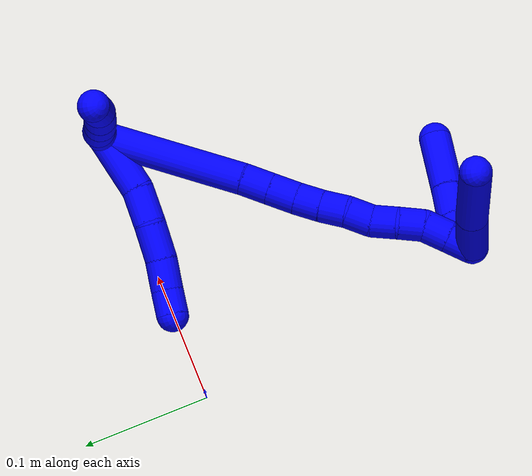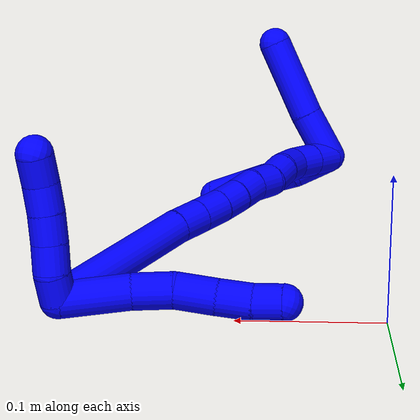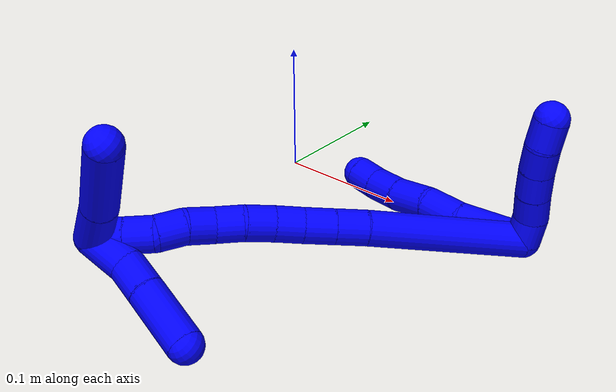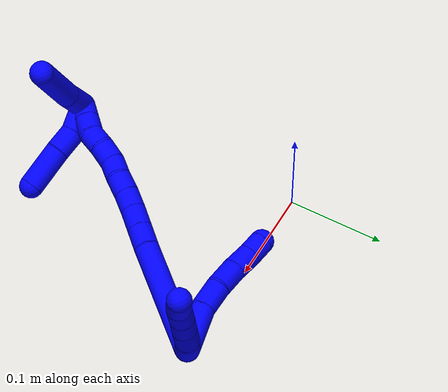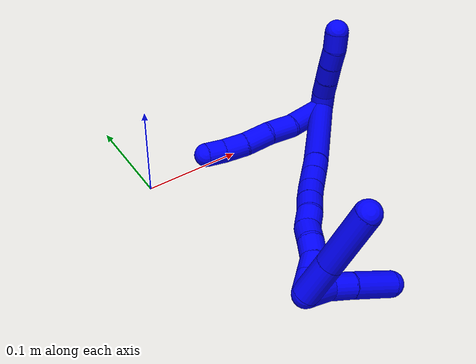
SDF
<sdf version="1.7">
 <world name="default">
  <model name="1">
   <static>0</static>
   <link name="1">
    <collision name="collision-cylinder-e_1_2_8">
     <pose>-0.021466 -0.006007 0.009417 0.56782 -1.09099 -0.350559</pose>
     <geometry><cylinder><radius>0.0125</radius><length>0.048396</length></cylinder></geometry>
     <surface>
      <friction><ode><mu>1.16</mu><mu2>1.16</mu2><slip1>0</slip1><slip2>0</slip2></ode></friction>
      <contact><ode><kp>1e+06</kp><kd>1</kd><max_vel>0</max_vel><min_depth>0.001</min_depth></ode></contact>
     </surface>
    </collision>
    <visual name="visual-cylinder-e_1_2_8">
     <pose>-0.021466 -0.006007 0.009417 0.56782 -1.09099 -0.350559</pose>
     <geometry><cylinder><radius>0.0125</radius><length>0.048396</length></cylinder></geometry>
     <material><ambient>0 0 1 1</ambient></material>
    </visual>
    <collision name="collision-cylinder-e_2_8_9">
     <pose>-0.056591 -0.012776 0.022798 0.189879 -1.28347 -0.142074</pose>
     <geometry><cylinder><radius>0.0125</radius><length>0.028487</length></cylinder></geometry>
     <surface>
      <friction><ode><mu>1.16</mu><mu2>1.16</mu2><slip1>0</slip1><slip2>0</slip2></ode></friction>
      <contact><ode><kp>1e+06</kp><kd>1</kd><max_vel>0</max_vel><min_depth>0.001</min_depth></ode></contact>
     </surface>
    </collision>
    <visual name="visual-cylinder-e_2_8_9">
     <pose>-0.056591 -0.012776 0.022798 0.189879 -1.28347 -0.142074</pose>
     <geometry><cylinder><radius>0.0125</radius><length>0.028487</length></cylinder></geometry>
     <material><ambient>0 0 1 1</ambient></material>
    </visual>
    <collision name="collision-cylinder-e_3_9_10">
     <pose>-0.084316 -0.015399 0.028239 0.899792 -1.40343 -0.775082</pose>
     <geometry><cylinder><radius>0.0125</radius><length>0.02853</length></cylinder></geometry>
     <surface>
      <friction><ode><mu>1.16</mu><mu2>1.16</mu2><slip1>0</slip1><slip2>0</slip2></ode></friction>
      <contact><ode><kp>1e+06</kp><kd>1</kd><max_vel>0</max_vel><min_depth>0.001</min_depth></ode></contact>
     </surface>
    </collision>
    <visual name="visual-cylinder-e_3_9_10">
     <pose>-0.084316 -0.015399 0.028239 0.899792 -1.40343 -0.775082</pose>
     <geometry><cylinder><radius>0.0125</radius><length>0.02853</length></cylinder></geometry>
     <material><ambient>0 0 1 1</ambient></material>
    </visual>
    <collision name="collision-cylinder-e_4_10_11">
     <pose>-0.110575 -0.017236 0.030953 -0.019648 -1.46971 0.017756</pose>
     <geometry><cylinder><radius>0.0125</radius><length>0.02451</length></cylinder></geometry>
     <surface>
      <friction><ode><mu>1.16</mu><mu2>1.16</mu2><slip1>0</slip1><slip2>0</slip2></ode></friction>
      <contact><ode><kp>1e+06</kp><kd>1</kd><max_vel>0</max_vel><min_depth>0.001</min_depth></ode></contact>
     </surface>
    </collision>
    <visual name="visual-cylinder-e_4_10_11">
     <pose>-0.110575 -0.017236 0.030953 -0.019648 -1.46971 0.017756</pose>
     <geometry><cylinder><radius>0.0125</radius><length>0.02451</length></cylinder></geometry>
     <material><ambient>0 0 1 1</ambient></material>
    </visual>
    <collision name="collision-cylinder-e_5_11_6">
     <pose>-0.13255 -0.016676 0.034374 -0.240277 -1.34488 0.191654</pose>
     <geometry><cylinder><radius>0.0125</radius><length>0.020077</length></cylinder></geometry>
     <surface>
      <friction><ode><mu>1.16</mu><mu2>1.16</mu2><slip1>0</slip1><slip2>0</slip2></ode></friction>
      <contact><ode><kp>1e+06</kp><kd>1</kd><max_vel>0</max_vel><min_depth>0.001</min_depth></ode></contact>
     </surface>
    </collision>
    <visual name="visual-cylinder-e_5_11_6">
     <pose>-0.13255 -0.016676 0.034374 -0.240277 -1.34488 0.191654</pose>
     <geometry><cylinder><radius>0.0125</radius><length>0.020077</length></cylinder></geometry>
     <material><ambient>0 0 1 1</ambient></material>
    </visual>
    <collision name="collision-cylinder-e_1_2_12">
     <pose>0.002672 0.006431 0.007177 -0.730622 0.270502 -0.104003</pose>
     <geometry><cylinder><radius>0.0125</radius><length>0.02</length></cylinder></geometry>
     <surface>
      <friction><ode><mu>1.16</mu><mu2>1.16</mu2><slip1>0</slip1><slip2>0</slip2></ode></friction>
      <contact><ode><kp>1e+06</kp><kd>1</kd><max_vel>0</max_vel><min_depth>0.001</min_depth></ode></contact>
     </surface>
    </collision>
    <visual name="visual-cylinder-e_1_2_12">
     <pose>0.002672 0.006431 0.007177 -0.730622 0.270502 -0.104003</pose>
     <geometry><cylinder><radius>0.0125</radius><length>0.02</length></cylinder></geometry>
     <material><ambient>0 0 1 1</ambient></material>
    </visual>
    <collision name="collision-cylinder-e_2_12_13">
     <pose>0.007616 0.017197 0.023074 -0.46135 0.229126 -0.054035</pose>
     <geometry><cylinder><radius>0.0125</radius><length>0.02</length></cylinder></geometry>
     <surface>
      <friction><ode><mu>1.16</mu><mu2>1.16</mu2><slip1>0</slip1><slip2>0</slip2></ode></friction>
      <contact><ode><kp>1e+06</kp><kd>1</kd><max_vel>0</max_vel><min_depth>0.001</min_depth></ode></contact>
     </surface>
    </collision>
    <visual name="visual-cylinder-e_2_12_13">
     <pose>0.007616 0.017197 0.023074 -0.46135 0.229126 -0.054035</pose>
     <geometry><cylinder><radius>0.0125</radius><length>0.02</length></cylinder></geometry>
     <material><ambient>0 0 1 1</ambient></material>
    </visual>
    <collision name="collision-cylinder-e_3_13_14">
     <pose>0.012378 0.026296 0.040226 -0.514346 0.251722 -0.066529</pose>
     <geometry><cylinder><radius>0.0125</radius><length>0.02</length></cylinder></geometry>
     <surface>
      <friction><ode><mu>1.16</mu><mu2>1.16</mu2><slip1>0</slip1><slip2>0</slip2></ode></friction>
      <contact><ode><kp>1e+06</kp><kd>1</kd><max_vel>0</max_vel><min_depth>0.001</min_depth></ode></contact>
     </surface>
    </collision>
    <visual name="visual-cylinder-e_3_13_14">
     <pose>0.012378 0.026296 0.040226 -0.514346 0.251722 -0.066529</pose>
     <geometry><cylinder><radius>0.0125</radius><length>0.02</length></cylinder></geometry>
     <material><ambient>0 0 1 1</ambient></material>
    </visual>
    <collision name="collision-cylinder-e_4_14_15">
     <pose>0.017904 0.036045 0.056779 -0.550418 0.308422 -0.087731</pose>
     <geometry><cylinder><radius>0.0125</radius><length>0.02</length></cylinder></geometry>
     <surface>
      <friction><ode><mu>1.16</mu><mu2>1.16</mu2><slip1>0</slip1><slip2>0</slip2></ode></friction>
      <contact><ode><kp>1e+06</kp><kd>1</kd><max_vel>0</max_vel><min_depth>0.001</min_depth></ode></contact>
     </surface>
    </collision>
    <visual name="visual-cylinder-e_4_14_15">
     <pose>0.017904 0.036045 0.056779 -0.550418 0.308422 -0.087731</pose>
     <geometry><cylinder><radius>0.0125</radius><length>0.02</length></cylinder></geometry>
     <material><ambient>0 0 1 1</ambient></material>
    </visual>
    <collision name="collision-cylinder-e_5_15_5">
     <pose>0.02348 0.047504 0.072083 -0.733658 0.256927 -0.099182</pose>
     <geometry><cylinder><radius>0.0125</radius><length>0.02</length></cylinder></geometry>
     <surface>
      <friction><ode><mu>1.16</mu><mu2>1.16</mu2><slip1>0</slip1><slip2>0</slip2></ode></friction>
      <contact><ode><kp>1e+06</kp><kd>1</kd><max_vel>0</max_vel><min_depth>0.001</min_depth></ode></contact>
     </surface>
    </collision>
    <visual name="visual-cylinder-e_5_15_5">
     <pose>0.02348 0.047504 0.072083 -0.733658 0.256927 -0.099182</pose>
     <geometry><cylinder><radius>0.0125</radius><length>0.02</length></cylinder></geometry>
     <material><ambient>0 0 1 1</ambient></material>
    </visual>
    <collision name="collision-cylinder-e_1_2_16">
     <pose>-0.022954 -0.034773 0.039949 0.71623 -0.408953 -0.154911</pose>
     <geometry><cylinder><radius>0.0125</radius><length>0.115446</length></cylinder></geometry>
     <surface>
      <friction><ode><mu>1.16</mu><mu2>1.16</mu2><slip1>0</slip1><slip2>0</slip2></ode></friction>
      <contact><ode><kp>1e+06</kp><kd>1</kd><max_vel>0</max_vel><min_depth>0.001</min_depth></ode></contact>
     </surface>
    </collision>
    <visual name="visual-cylinder-e_1_2_16">
     <pose>-0.022954 -0.034773 0.039949 0.71623 -0.408953 -0.154911</pose>
     <geometry><cylinder><radius>0.0125</radius><length>0.115446</length></cylinder></geometry>
     <material><ambient>0 0 1 1</ambient></material>
    </visual>
    <collision name="collision-cylinder-e_2_16_17">
     <pose>-0.050934 -0.076451 0.086883 0.77974 -0.473073 -0.197451</pose>
     <geometry><cylinder><radius>0.0125</radius><length>0.022067</length></cylinder></geometry>
     <surface>
      <friction><ode><mu>1.16</mu><mu2>1.16</mu2><slip1>0</slip1><slip2>0</slip2></ode></friction>
      <contact><ode><kp>1e+06</kp><kd>1</kd><max_vel>0</max_vel><min_depth>0.001</min_depth></ode></contact>
     </surface>
    </collision>
    <visual name="visual-cylinder-e_2_16_17">
     <pose>-0.050934 -0.076451 0.086883 0.77974 -0.473073 -0.197451</pose>
     <geometry><cylinder><radius>0.0125</radius><length>0.022067</length></cylinder></geometry>
     <material><ambient>0 0 1 1</ambient></material>
    </visual>
    <collision name="collision-cylinder-e_3_17_18">
     <pose>-0.060954 -0.090231 0.10089 0.774721 -0.470045 -0.194758</pose>
     <geometry><cylinder><radius>0.0125</radius><length>0.022045</length></cylinder></geometry>
     <surface>
      <friction><ode><mu>1.16</mu><mu2>1.16</mu2><slip1>0</slip1><slip2>0</slip2></ode></friction>
      <contact><ode><kp>1e+06</kp><kd>1</kd><max_vel>0</max_vel><min_depth>0.001</min_depth></ode></contact>
     </surface>
    </collision>
    <visual name="visual-cylinder-e_3_17_18">
     <pose>-0.060954 -0.090231 0.10089 0.774721 -0.470045 -0.194758</pose>
     <geometry><cylinder><radius>0.0125</radius><length>0.022045</length></cylinder></geometry>
     <material><ambient>0 0 1 1</ambient></material>
    </visual>
    <collision name="collision-cylinder-e_4_18_19">
     <pose>-0.070013 -0.103281 0.114678 0.73983 -0.417859 -0.164062</pose>
     <geometry><cylinder><radius>0.0125</radius><length>0.020045</length></cylinder></geometry>
     <surface>
      <friction><ode><mu>1.16</mu><mu2>1.16</mu2><slip1>0</slip1><slip2>0</slip2></ode></friction>
      <contact><ode><kp>1e+06</kp><kd>1</kd><max_vel>0</max_vel><min_depth>0.001</min_depth></ode></contact>
     </surface>
    </collision>
    <visual name="visual-cylinder-e_4_18_19">
     <pose>-0.070013 -0.103281 0.114678 0.73983 -0.417859 -0.164062</pose>
     <geometry><cylinder><radius>0.0125</radius><length>0.020045</length></cylinder></geometry>
     <material><ambient>0 0 1 1</ambient></material>
    </visual>
    <collision name="collision-cylinder-e_5_19_20">
     <pose>-0.0775 -0.115947 0.12832 0.756542 -0.347027 -0.139088</pose>
     <geometry><cylinder><radius>0.0125</radius><length>0.02011</length></cylinder></geometry>
     <surface>
      <friction><ode><mu>1.16</mu><mu2>1.16</mu2><slip1>0</slip1><slip2>0</slip2></ode></friction>
      <contact><ode><kp>1e+06</kp><kd>1</kd><max_vel>0</max_vel><min_depth>0.001</min_depth></ode></contact>
     </surface>
    </collision>
    <visual name="visual-cylinder-e_5_19_20">
     <pose>-0.0775 -0.115947 0.12832 0.756542 -0.347027 -0.139088</pose>
     <geometry><cylinder><radius>0.0125</radius><length>0.02011</length></cylinder></geometry>
     <material><ambient>0 0 1 1</ambient></material>
    </visual>
    <collision name="collision-cylinder-e_6_20_21">
     <pose>-0.085654 -0.129431 0.140562 0.916374 -0.492813 -0.246832</pose>
     <geometry><cylinder><radius>0.0125</radius><length>0.020012</length></cylinder></geometry>
     <surface>
      <friction><ode><mu>1.16</mu><mu2>1.16</mu2><slip1>0</slip1><slip2>0</slip2></ode></friction>
      <contact><ode><kp>1e+06</kp><kd>1</kd><max_vel>0</max_vel><min_depth>0.001</min_depth></ode></contact>
     </surface>
    </collision>
    <visual name="visual-cylinder-e_6_20_21">
     <pose>-0.085654 -0.129431 0.140562 0.916374 -0.492813 -0.246832</pose>
     <geometry><cylinder><radius>0.0125</radius><length>0.020012</length></cylinder></geometry>
     <material><ambient>0 0 1 1</ambient></material>
    </visual>
    <collision name="collision-cylinder-e_7_21_22">
     <pose>-0.09243 -0.143332 0.152934 0.778245 -0.204657 -0.08416</pose>
     <geometry><cylinder><radius>0.0125</radius><length>0.020095</length></cylinder></geometry>
     <surface>
      <friction><ode><mu>1.16</mu><mu2>1.16</mu2><slip1>0</slip1><slip2>0</slip2></ode></friction>
      <contact><ode><kp>1e+06</kp><kd>1</kd><max_vel>0</max_vel><min_depth>0.001</min_depth></ode></contact>
     </surface>
    </collision>
    <visual name="visual-cylinder-e_7_21_22">
     <pose>-0.09243 -0.143332 0.152934 0.778245 -0.204657 -0.08416</pose>
     <geometry><cylinder><radius>0.0125</radius><length>0.020095</length></cylinder></geometry>
     <material><ambient>0 0 1 1</ambient></material>
    </visual>
    <collision name="collision-cylinder-e_8_22_23">
     <pose>-0.096795 -0.158458 0.165164 1.00467 -0.234184 -0.129058</pose>
     <geometry><cylinder><radius>0.0125</radius><length>0.020026</length></cylinder></geometry>
     <surface>
      <friction><ode><mu>1.16</mu><mu2>1.16</mu2><slip1>0</slip1><slip2>0</slip2></ode></friction>
      <contact><ode><kp>1e+06</kp><kd>1</kd><max_vel>0</max_vel><min_depth>0.001</min_depth></ode></contact>
     </surface>
    </collision>
    <visual name="visual-cylinder-e_8_22_23">
     <pose>-0.096795 -0.158458 0.165164 1.00467 -0.234184 -0.129058</pose>
     <geometry><cylinder><radius>0.0125</radius><length>0.020026</length></cylinder></geometry>
     <material><ambient>0 0 1 1</ambient></material>
    </visual>
    <collision name="collision-cylinder-e_9_23_24">
     <pose>-0.104502 -0.173488 0.175436 0.932839 -0.565814 -0.290658</pose>
     <geometry><cylinder><radius>0.0125</radius><length>0.020084</length></cylinder></geometry>
     <surface>
      <friction><ode><mu>1.16</mu><mu2>1.16</mu2><slip1>0</slip1><slip2>0</slip2></ode></friction>
      <contact><ode><kp>1e+06</kp><kd>1</kd><max_vel>0</max_vel><min_depth>0.001</min_depth></ode></contact>
     </surface>
    </collision>
    <visual name="visual-cylinder-e_9_23_24">
     <pose>-0.104502 -0.173488 0.175436 0.932839 -0.565814 -0.290658</pose>
     <geometry><cylinder><radius>0.0125</radius><length>0.020084</length></cylinder></geometry>
     <material><ambient>0 0 1 1</ambient></material>
    </visual>
    <collision name="collision-cylinder-e_10_24_1">
     <pose>-0.115331 -0.187081 0.185488 0.93524 -0.573571 -0.295677</pose>
     <geometry><cylinder><radius>0.0125</radius><length>0.020069</length></cylinder></geometry>
     <surface>
      <friction><ode><mu>1.16</mu><mu2>1.16</mu2><slip1>0</slip1><slip2>0</slip2></ode></friction>
      <contact><ode><kp>1e+06</kp><kd>1</kd><max_vel>0</max_vel><min_depth>0.001</min_depth></ode></contact>
     </surface>
    </collision>
    <visual name="visual-cylinder-e_10_24_1">
     <pose>-0.115331 -0.187081 0.185488 0.93524 -0.573571 -0.295677</pose>
     <geometry><cylinder><radius>0.0125</radius><length>0.020069</length></cylinder></geometry>
     <material><ambient>0 0 1 1</ambient></material>
    </visual>
    <collision name="collision-cylinder-e_1_1_25">
     <pose>-0.109022 -0.193814 0.181143 -3.13628 0.898867 -3.13058</pose>
     <geometry><cylinder><radius>0.0125</radius><length>0.030038</length></cylinder></geometry>
     <surface>
      <friction><ode><mu>1.16</mu><mu2>1.16</mu2><slip1>0</slip1><slip2>0</slip2></ode></friction>
      <contact><ode><kp>1e+06</kp><kd>1</kd><max_vel>0</max_vel><min_depth>0.001</min_depth></ode></contact>
     </surface>
    </collision>
    <visual name="visual-cylinder-e_1_1_25">
     <pose>-0.109022 -0.193814 0.181143 -3.13628 0.898867 -3.13058</pose>
     <geometry><cylinder><radius>0.0125</radius><length>0.030038</length></cylinder></geometry>
     <material><ambient>0 0 1 1</ambient></material>
    </visual>
    <collision name="collision-cylinder-e_2_25_26">
     <pose>-0.086153 -0.196415 0.166873 2.6475 1.10491 2.36496</pose>
     <geometry><cylinder><radius>0.0125</radius><length>0.024883</length></cylinder></geometry>
     <surface>
      <friction><ode><mu>1.16</mu><mu2>1.16</mu2><slip1>0</slip1><slip2>0</slip2></ode></friction>
      <contact><ode><kp>1e+06</kp><kd>1</kd><max_vel>0</max_vel><min_depth>0.001</min_depth></ode></contact>
     </surface>
    </collision>
    <visual name="visual-cylinder-e_2_25_26">
     <pose>-0.086153 -0.196415 0.166873 2.6475 1.10491 2.36496</pose>
     <geometry><cylinder><radius>0.0125</radius><length>0.024883</length></cylinder></geometry>
     <material><ambient>0 0 1 1</ambient></material>
    </visual>
    <collision name="collision-cylinder-e_3_26_4">
     <pose>-0.055629 -0.204142 0.151676 2.68275 1.03731 2.36485</pose>
     <geometry><cylinder><radius>0.0125</radius><length>0.045079</length></cylinder></geometry>
     <surface>
      <friction><ode><mu>1.16</mu><mu2>1.16</mu2><slip1>0</slip1><slip2>0</slip2></ode></friction>
      <contact><ode><kp>1e+06</kp><kd>1</kd><max_vel>0</max_vel><min_depth>0.001</min_depth></ode></contact>
     </surface>
    </collision>
    <visual name="visual-cylinder-e_3_26_4">
     <pose>-0.055629 -0.204142 0.151676 2.68275 1.03731 2.36485</pose>
     <geometry><cylinder><radius>0.0125</radius><length>0.045079</length></cylinder></geometry>
     <material><ambient>0 0 1 1</ambient></material>
    </visual>
    <collision name="collision-cylinder-e_1_1_27">
     <pose>-0.108728 -0.186198 0.20333 -0.538287 0.678266 -0.193998</pose>
     <geometry><cylinder><radius>0.0125</radius><length>0.038405</length></cylinder></geometry>
     <surface>
      <friction><ode><mu>1.16</mu><mu2>1.16</mu2><slip1>0</slip1><slip2>0</slip2></ode></friction>
      <contact><ode><kp>1e+06</kp><kd>1</kd><max_vel>0</max_vel><min_depth>0.001</min_depth></ode></contact>
     </surface>
    </collision>
    <visual name="visual-cylinder-e_1_1_27">
     <pose>-0.108728 -0.186198 0.20333 -0.538287 0.678266 -0.193998</pose>
     <geometry><cylinder><radius>0.0125</radius><length>0.038405</length></cylinder></geometry>
     <material><ambient>0 0 1 1</ambient></material>
    </visual>
    <collision name="collision-cylinder-e_2_27_3">
     <pose>-0.07912 -0.166688 0.238525 -0.487178 0.606693 -0.155267</pose>
     <geometry><cylinder><radius>0.0125</radius><length>0.061595</length></cylinder></geometry>
     <surface>
      <friction><ode><mu>1.16</mu><mu2>1.16</mu2><slip1>0</slip1><slip2>0</slip2></ode></friction>
      <contact><ode><kp>1e+06</kp><kd>1</kd><max_vel>0</max_vel><min_depth>0.001</min_depth></ode></contact>
     </surface>
    </collision>
    <visual name="visual-cylinder-e_2_27_3">
     <pose>-0.07912 -0.166688 0.238525 -0.487178 0.606693 -0.155267</pose>
     <geometry><cylinder><radius>0.0125</radius><length>0.061595</length></cylinder></geometry>
     <material><ambient>0 0 1 1</ambient></material>
    </visual>
    <collision name="collision-sphere-3">
     <pose>-0.061561 -0.154844 0.260883 0 -0 0</pose>
     <geometry><sphere><radius>0.0125</radius></sphere></geometry>
     <surface>
      <friction><ode><mu>1.16</mu><mu2>1.16</mu2><slip1>0</slip1><slip2>0</slip2></ode></friction>
      <contact><ode><kp>1e+06</kp><kd>1</kd><max_vel>0</max_vel><min_depth>0.001</min_depth></ode></contact>
     </surface>
    </collision>
    <visual name="visual-sphere-3">
     <pose>-0.061561 -0.154844 0.260883 0 -0 0</pose>
     <geometry><sphere><radius>0.0125</radius></sphere></geometry>
     <material><ambient>0 0 1 1</ambient></material>
    </visual>
    <collision name="collision-sphere-27">
     <pose>-0.096679 -0.178533 0.216168 0 -0 0</pose>
     <geometry><sphere><radius>0.0125</radius></sphere></geometry>
     <surface>
      <friction><ode><mu>1.16</mu><mu2>1.16</mu2><slip1>0</slip1><slip2>0</slip2></ode></friction>
      <contact><ode><kp>1e+06</kp><kd>1</kd><max_vel>0</max_vel><min_depth>0.001</min_depth></ode></contact>
     </surface>
    </collision>
    <visual name="visual-sphere-27">
     <pose>-0.096679 -0.178533 0.216168 0 -0 0</pose>
     <geometry><sphere><radius>0.0125</radius></sphere></geometry>
     <material><ambient>0 0 1 1</ambient></material>
    </visual>
    <collision name="collision-sphere-4">
     <pose>-0.036222 -0.209219 0.1414 0 -0 0</pose>
     <geometry><sphere><radius>0.0125</radius></sphere></geometry>
     <surface>
      <friction><ode><mu>1.16</mu><mu2>1.16</mu2><slip1>0</slip1><slip2>0</slip2></ode></friction>
      <contact><ode><kp>1e+06</kp><kd>1</kd><max_vel>0</max_vel><min_depth>0.001</min_depth></ode></contact>
     </surface>
    </collision>
    <visual name="visual-sphere-4">
     <pose>-0.036222 -0.209219 0.1414 0 -0 0</pose>
     <geometry><sphere><radius>0.0125</radius></sphere></geometry>
     <material><ambient>0 0 1 1</ambient></material>
    </visual>
    <collision name="collision-sphere-26">
     <pose>-0.075037 -0.199065 0.161953 0 -0 0</pose>
     <geometry><sphere><radius>0.0125</radius></sphere></geometry>
     <surface>
      <friction><ode><mu>1.16</mu><mu2>1.16</mu2><slip1>0</slip1><slip2>0</slip2></ode></friction>
      <contact><ode><kp>1e+06</kp><kd>1</kd><max_vel>0</max_vel><min_depth>0.001</min_depth></ode></contact>
     </surface>
    </collision>
    <visual name="visual-sphere-26">
     <pose>-0.075037 -0.199065 0.161953 0 -0 0</pose>
     <geometry><sphere><radius>0.0125</radius></sphere></geometry>
     <material><ambient>0 0 1 1</ambient></material>
    </visual>
    <collision name="collision-sphere-25">
     <pose>-0.097268 -0.193765 0.171794 0 -0 0</pose>
     <geometry><sphere><radius>0.0125</radius></sphere></geometry>
     <surface>
      <friction><ode><mu>1.16</mu><mu2>1.16</mu2><slip1>0</slip1><slip2>0</slip2></ode></friction>
      <contact><ode><kp>1e+06</kp><kd>1</kd><max_vel>0</max_vel><min_depth>0.001</min_depth></ode></contact>
     </surface>
    </collision>
    <visual name="visual-sphere-25">
     <pose>-0.097268 -0.193765 0.171794 0 -0 0</pose>
     <geometry><sphere><radius>0.0125</radius></sphere></geometry>
     <material><ambient>0 0 1 1</ambient></material>
    </visual>
    <collision name="collision-sphere-1">
     <pose>-0.120776 -0.193864 0.190492 0 -0 0</pose>
     <geometry><sphere><radius>0.0125</radius></sphere></geometry>
     <surface>
      <friction><ode><mu>1.16</mu><mu2>1.16</mu2><slip1>0</slip1><slip2>0</slip2></ode></friction>
      <contact><ode><kp>1e+06</kp><kd>1</kd><max_vel>0</max_vel><min_depth>0.001</min_depth></ode></contact>
     </surface>
    </collision>
    <visual name="visual-sphere-1">
     <pose>-0.120776 -0.193864 0.190492 0 -0 0</pose>
     <geometry><sphere><radius>0.0125</radius></sphere></geometry>
     <material><ambient>0 0 1 1</ambient></material>
    </visual>
    <collision name="collision-sphere-24">
     <pose>-0.109886 -0.180298 0.180485 0 -0 0</pose>
     <geometry><sphere><radius>0.0125</radius></sphere></geometry>
     <surface>
      <friction><ode><mu>1.16</mu><mu2>1.16</mu2><slip1>0</slip1><slip2>0</slip2></ode></friction>
      <contact><ode><kp>1e+06</kp><kd>1</kd><max_vel>0</max_vel><min_depth>0.001</min_depth></ode></contact>
     </surface>
    </collision>
    <visual name="visual-sphere-24">
     <pose>-0.109886 -0.180298 0.180485 0 -0 0</pose>
     <geometry><sphere><radius>0.0125</radius></sphere></geometry>
     <material><ambient>0 0 1 1</ambient></material>
    </visual>
    <collision name="collision-sphere-23">
     <pose>-0.099119 -0.166678 0.170388 0 -0 0</pose>
     <geometry><sphere><radius>0.0125</radius></sphere></geometry>
     <surface>
      <friction><ode><mu>1.16</mu><mu2>1.16</mu2><slip1>0</slip1><slip2>0</slip2></ode></friction>
      <contact><ode><kp>1e+06</kp><kd>1</kd><max_vel>0</max_vel><min_depth>0.001</min_depth></ode></contact>
     </surface>
    </collision>
    <visual name="visual-sphere-23">
     <pose>-0.099119 -0.166678 0.170388 0 -0 0</pose>
     <geometry><sphere><radius>0.0125</radius></sphere></geometry>
     <material><ambient>0 0 1 1</ambient></material>
    </visual>
    <collision name="collision-sphere-22">
     <pose>-0.094472 -0.150238 0.15994 0 -0 0</pose>
     <geometry><sphere><radius>0.0125</radius></sphere></geometry>
     <surface>
      <friction><ode><mu>1.16</mu><mu2>1.16</mu2><slip1>0</slip1><slip2>0</slip2></ode></friction>
      <contact><ode><kp>1e+06</kp><kd>1</kd><max_vel>0</max_vel><min_depth>0.001</min_depth></ode></contact>
     </surface>
    </collision>
    <visual name="visual-sphere-22">
     <pose>-0.094472 -0.150238 0.15994 0 -0 0</pose>
     <geometry><sphere><radius>0.0125</radius></sphere></geometry>
     <material><ambient>0 0 1 1</ambient></material>
    </visual>
    <collision name="collision-sphere-21">
     <pose>-0.090388 -0.136425 0.145928 0 -0 0</pose>
     <geometry><sphere><radius>0.0125</radius></sphere></geometry>
     <surface>
      <friction><ode><mu>1.16</mu><mu2>1.16</mu2><slip1>0</slip1><slip2>0</slip2></ode></friction>
      <contact><ode><kp>1e+06</kp><kd>1</kd><max_vel>0</max_vel><min_depth>0.001</min_depth></ode></contact>
     </surface>
    </collision>
    <visual name="visual-sphere-21">
     <pose>-0.090388 -0.136425 0.145928 0 -0 0</pose>
     <geometry><sphere><radius>0.0125</radius></sphere></geometry>
     <material><ambient>0 0 1 1</ambient></material>
    </visual>
    <collision name="collision-sphere-6">
     <pose>-0.142334 -0.016141 0.036558 0 -0 0</pose>
     <geometry><sphere><radius>0.0125</radius></sphere></geometry>
     <surface>
      <friction><ode><mu>1.16</mu><mu2>1.16</mu2><slip1>0</slip1><slip2>0</slip2></ode></friction>
      <contact><ode><kp>1e+06</kp><kd>1</kd><max_vel>0</max_vel><min_depth>0.001</min_depth></ode></contact>
     </surface>
    </collision>
    <visual name="visual-sphere-6">
     <pose>-0.142334 -0.016141 0.036558 0 -0 0</pose>
     <geometry><sphere><radius>0.0125</radius></sphere></geometry>
     <material><ambient>0 0 1 1</ambient></material>
    </visual>
    <collision name="collision-sphere-11">
     <pose>-0.122767 -0.017212 0.03219 0 -0 0</pose>
     <geometry><sphere><radius>0.0125</radius></sphere></geometry>
     <surface>
      <friction><ode><mu>1.16</mu><mu2>1.16</mu2><slip1>0</slip1><slip2>0</slip2></ode></friction>
      <contact><ode><kp>1e+06</kp><kd>1</kd><max_vel>0</max_vel><min_depth>0.001</min_depth></ode></contact>
     </surface>
    </collision>
    <visual name="visual-sphere-11">
     <pose>-0.122767 -0.017212 0.03219 0 -0 0</pose>
     <geometry><sphere><radius>0.0125</radius></sphere></geometry>
     <material><ambient>0 0 1 1</ambient></material>
    </visual>
    <collision name="collision-sphere-10">
     <pose>-0.098382 -0.01726 0.029717 0 -0 0</pose>
     <geometry><sphere><radius>0.0125</radius></sphere></geometry>
     <surface>
      <friction><ode><mu>1.16</mu><mu2>1.16</mu2><slip1>0</slip1><slip2>0</slip2></ode></friction>
      <contact><ode><kp>1e+06</kp><kd>1</kd><max_vel>0</max_vel><min_depth>0.001</min_depth></ode></contact>
     </surface>
    </collision>
    <visual name="visual-sphere-10">
     <pose>-0.098382 -0.01726 0.029717 0 -0 0</pose>
     <geometry><sphere><radius>0.0125</radius></sphere></geometry>
     <material><ambient>0 0 1 1</ambient></material>
    </visual>
    <collision name="collision-sphere-9">
     <pose>-0.070251 -0.013538 0.026762 0 -0 0</pose>
     <geometry><sphere><radius>0.0125</radius></sphere></geometry>
     <surface>
      <friction><ode><mu>1.16</mu><mu2>1.16</mu2><slip1>0</slip1><slip2>0</slip2></ode></friction>
      <contact><ode><kp>1e+06</kp><kd>1</kd><max_vel>0</max_vel><min_depth>0.001</min_depth></ode></contact>
     </surface>
    </collision>
    <visual name="visual-sphere-9">
     <pose>-0.070251 -0.013538 0.026762 0 -0 0</pose>
     <geometry><sphere><radius>0.0125</radius></sphere></geometry>
     <material><ambient>0 0 1 1</ambient></material>
    </visual>
    <collision name="collision-sphere-2">
     <geometry><sphere><radius>0.0125</radius></sphere></geometry>
     <surface>
      <friction><ode><mu>1.16</mu><mu2>1.16</mu2><slip1>0</slip1><slip2>0</slip2></ode></friction>
      <contact><ode><kp>1e+06</kp><kd>1</kd><max_vel>0</max_vel><min_depth>0.001</min_depth></ode></contact>
     </surface>
    </collision>
    <visual name="visual-sphere-2">
     <geometry><sphere><radius>0.0125</radius></sphere></geometry>
     <material><ambient>0 0 1 1</ambient></material>
    </visual>
    <collision name="collision-sphere-19">
     <pose>-0.074081 -0.109456 0.121443 0 -0 0</pose>
     <geometry><sphere><radius>0.0125</radius></sphere></geometry>
     <surface>
      <friction><ode><mu>1.16</mu><mu2>1.16</mu2><slip1>0</slip1><slip2>0</slip2></ode></friction>
      <contact><ode><kp>1e+06</kp><kd>1</kd><max_vel>0</max_vel><min_depth>0.001</min_depth></ode></contact>
     </surface>
    </collision>
    <visual name="visual-sphere-19">
     <pose>-0.074081 -0.109456 0.121443 0 -0 0</pose>
     <geometry><sphere><radius>0.0125</radius></sphere></geometry>
     <material><ambient>0 0 1 1</ambient></material>
    </visual>
    <collision name="collision-sphere-8">
     <pose>-0.042931 -0.012014 0.018834 0 -0 0</pose>
     <geometry><sphere><radius>0.0125</radius></sphere></geometry>
     <surface>
      <friction><ode><mu>1.16</mu><mu2>1.16</mu2><slip1>0</slip1><slip2>0</slip2></ode></friction>
      <contact><ode><kp>1e+06</kp><kd>1</kd><max_vel>0</max_vel><min_depth>0.001</min_depth></ode></contact>
     </surface>
    </collision>
    <visual name="visual-sphere-8">
     <pose>-0.042931 -0.012014 0.018834 0 -0 0</pose>
     <geometry><sphere><radius>0.0125</radius></sphere></geometry>
     <material><ambient>0 0 1 1</ambient></material>
    </visual>
    <collision name="collision-sphere-12">
     <pose>0.005344 0.012861 0.014354 0 -0 0</pose>
     <geometry><sphere><radius>0.0125</radius></sphere></geometry>
     <surface>
      <friction><ode><mu>1.16</mu><mu2>1.16</mu2><slip1>0</slip1><slip2>0</slip2></ode></friction>
      <contact><ode><kp>1e+06</kp><kd>1</kd><max_vel>0</max_vel><min_depth>0.001</min_depth></ode></contact>
     </surface>
    </collision>
    <visual name="visual-sphere-12">
     <pose>0.005344 0.012861 0.014354 0 -0 0</pose>
     <geometry><sphere><radius>0.0125</radius></sphere></geometry>
     <material><ambient>0 0 1 1</ambient></material>
    </visual>
    <collision name="collision-sphere-13">
     <pose>0.009887 0.021532 0.031795 0 -0 0</pose>
     <geometry><sphere><radius>0.0125</radius></sphere></geometry>
     <surface>
      <friction><ode><mu>1.16</mu><mu2>1.16</mu2><slip1>0</slip1><slip2>0</slip2></ode></friction>
      <contact><ode><kp>1e+06</kp><kd>1</kd><max_vel>0</max_vel><min_depth>0.001</min_depth></ode></contact>
     </surface>
    </collision>
    <visual name="visual-sphere-13">
     <pose>0.009887 0.021532 0.031795 0 -0 0</pose>
     <geometry><sphere><radius>0.0125</radius></sphere></geometry>
     <material><ambient>0 0 1 1</ambient></material>
    </visual>
    <collision name="collision-sphere-14">
     <pose>0.014868 0.031061 0.048658 0 -0 0</pose>
     <geometry><sphere><radius>0.0125</radius></sphere></geometry>
     <surface>
      <friction><ode><mu>1.16</mu><mu2>1.16</mu2><slip1>0</slip1><slip2>0</slip2></ode></friction>
      <contact><ode><kp>1e+06</kp><kd>1</kd><max_vel>0</max_vel><min_depth>0.001</min_depth></ode></contact>
     </surface>
    </collision>
    <visual name="visual-sphere-14">
     <pose>0.014868 0.031061 0.048658 0 -0 0</pose>
     <geometry><sphere><radius>0.0125</radius></sphere></geometry>
     <material><ambient>0 0 1 1</ambient></material>
    </visual>
    <collision name="collision-sphere-15">
     <pose>0.020939 0.041028 0.0649 0 -0 0</pose>
     <geometry><sphere><radius>0.0125</radius></sphere></geometry>
     <surface>
      <friction><ode><mu>1.16</mu><mu2>1.16</mu2><slip1>0</slip1><slip2>0</slip2></ode></friction>
      <contact><ode><kp>1e+06</kp><kd>1</kd><max_vel>0</max_vel><min_depth>0.001</min_depth></ode></contact>
     </surface>
    </collision>
    <visual name="visual-sphere-15">
     <pose>0.020939 0.041028 0.0649 0 -0 0</pose>
     <geometry><sphere><radius>0.0125</radius></sphere></geometry>
     <material><ambient>0 0 1 1</ambient></material>
    </visual>
    <collision name="collision-sphere-5">
     <pose>0.026022 0.053981 0.079267 0 -0 0</pose>
     <geometry><sphere><radius>0.0125</radius></sphere></geometry>
     <surface>
      <friction><ode><mu>1.16</mu><mu2>1.16</mu2><slip1>0</slip1><slip2>0</slip2></ode></friction>
      <contact><ode><kp>1e+06</kp><kd>1</kd><max_vel>0</max_vel><min_depth>0.001</min_depth></ode></contact>
     </surface>
    </collision>
    <visual name="visual-sphere-5">
     <pose>0.026022 0.053981 0.079267 0 -0 0</pose>
     <geometry><sphere><radius>0.0125</radius></sphere></geometry>
     <material><ambient>0 0 1 1</ambient></material>
    </visual>
    <collision name="collision-sphere-16">
     <pose>-0.045907 -0.069545 0.079899 0 -0 0</pose>
     <geometry><sphere><radius>0.0125</radius></sphere></geometry>
     <surface>
      <friction><ode><mu>1.16</mu><mu2>1.16</mu2><slip1>0</slip1><slip2>0</slip2></ode></friction>
      <contact><ode><kp>1e+06</kp><kd>1</kd><max_vel>0</max_vel><min_depth>0.001</min_depth></ode></contact>
     </surface>
    </collision>
    <visual name="visual-sphere-16">
     <pose>-0.045907 -0.069545 0.079899 0 -0 0</pose>
     <geometry><sphere><radius>0.0125</radius></sphere></geometry>
     <material><ambient>0 0 1 1</ambient></material>
    </visual>
    <collision name="collision-sphere-17">
     <pose>-0.055961 -0.083357 0.093867 0 -0 0</pose>
     <geometry><sphere><radius>0.0125</radius></sphere></geometry>
     <surface>
      <friction><ode><mu>1.16</mu><mu2>1.16</mu2><slip1>0</slip1><slip2>0</slip2></ode></friction>
      <contact><ode><kp>1e+06</kp><kd>1</kd><max_vel>0</max_vel><min_depth>0.001</min_depth></ode></contact>
     </surface>
    </collision>
    <visual name="visual-sphere-17">
     <pose>-0.055961 -0.083357 0.093867 0 -0 0</pose>
     <geometry><sphere><radius>0.0125</radius></sphere></geometry>
     <material><ambient>0 0 1 1</ambient></material>
    </visual>
    <collision name="collision-sphere-18">
     <pose>-0.065946 -0.097105 0.107912 0 -0 0</pose>
     <geometry><sphere><radius>0.0125</radius></sphere></geometry>
     <surface>
      <friction><ode><mu>1.16</mu><mu2>1.16</mu2><slip1>0</slip1><slip2>0</slip2></ode></friction>
      <contact><ode><kp>1e+06</kp><kd>1</kd><max_vel>0</max_vel><min_depth>0.001</min_depth></ode></contact>
     </surface>
    </collision>
    <visual name="visual-sphere-18">
     <pose>-0.065946 -0.097105 0.107912 0 -0 0</pose>
     <geometry><sphere><radius>0.0125</radius></sphere></geometry>
     <material><ambient>0 0 1 1</ambient></material>
    </visual>
    <collision name="collision-sphere-20">
     <pose>-0.08092 -0.122437 0.135196 0 -0 0</pose>
     <geometry><sphere><radius>0.0125</radius></sphere></geometry>
     <surface>
      <friction><ode><mu>1.16</mu><mu2>1.16</mu2><slip1>0</slip1><slip2>0</slip2></ode></friction>
      <contact><ode><kp>1e+06</kp><kd>1</kd><max_vel>0</max_vel><min_depth>0.001</min_depth></ode></contact>
     </surface>
    </collision>
    <visual name="visual-sphere-20">
     <pose>-0.08092 -0.122437 0.135196 0 -0 0</pose>
     <geometry><sphere><radius>0.0125</radius></sphere></geometry>
     <material><ambient>0 0 1 1</ambient></material>
    </visual>
    <inertial>
     <pose>-0.058834 -0.085982 0.101801 0 -0 0</pose>
     <mass>0.75</mass>
     <inertia>
      <ixx>0.000131</ixx>
      <ixy>0</ixy>
      <ixz>0</ixz>
      <iyy>0.000146</iyy>
      <iyz>0</iyz>
      <izz>0.000153</izz>
     </inertia>
    </inertial>
   </link>
   <pose>0.214902 -0.001092 0.012351 0.576863 -0.143406 -0.241671</pose>
  </model>
 </world>
</sdf>
